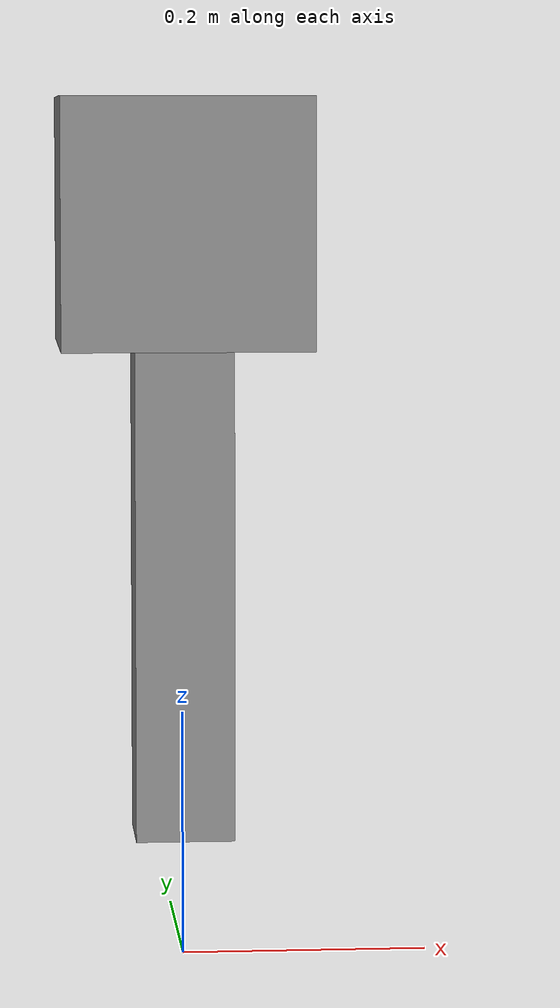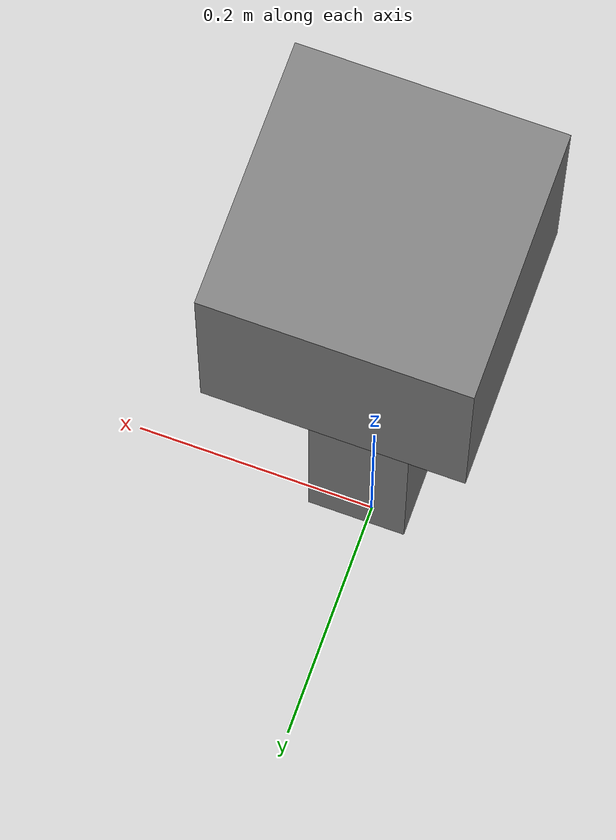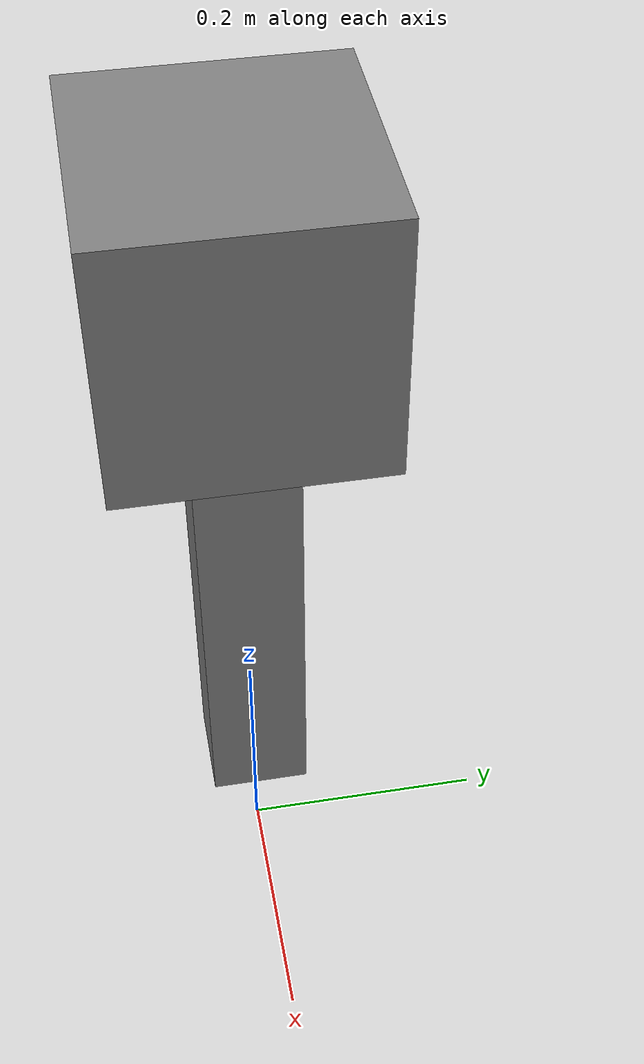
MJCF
<mujoco model="single_joint_motor">
    <option gravity="0 0 0"/>

    <worldbody>
        <body name="base" pos="0 0 0.6">
            <geom
                type="box"
                size="0.1 0.1 0.1"
                mass="1"
            />

            <body name="link" pos="0 0 -0.1">
                <joint
                    name="joint1"
                    type="hinge"
                    axis="0 1 0"
                    range="-90 90"
                />
                <geom
                    type="box"
                    pos="0 0 -0.2"
                    size="0.04 0.04 0.2"
                    mass="0.5"
                />
            </body>
        </body>
    </worldbody>

    <actuator>
        <motor
            name="joint1_motor"
            joint="joint1"
            gear="1"
        />
    </actuator>
</mujoco>
